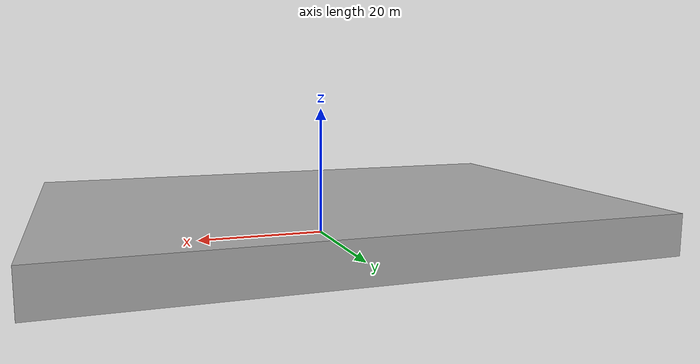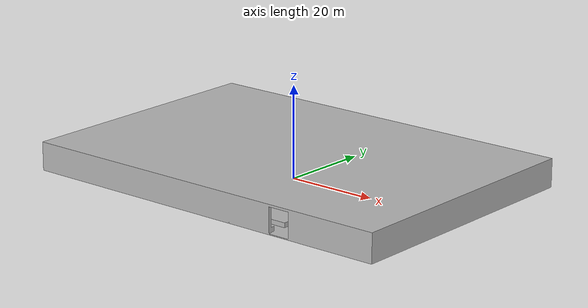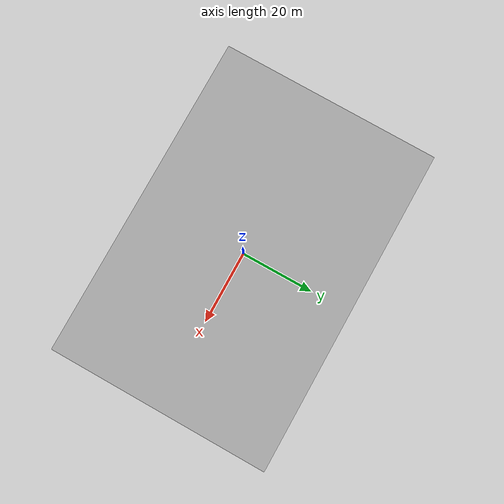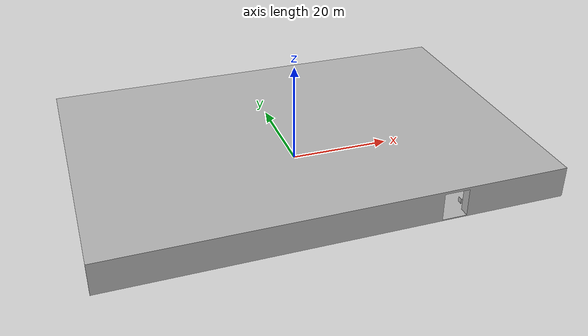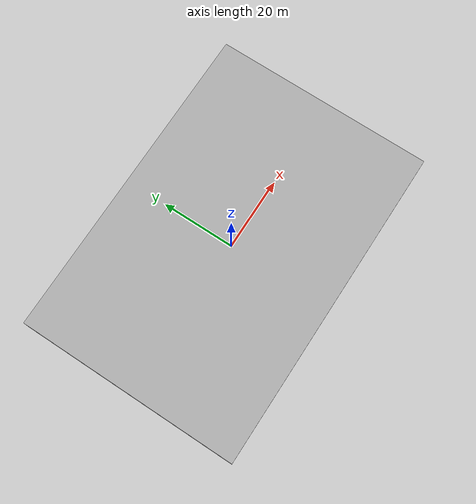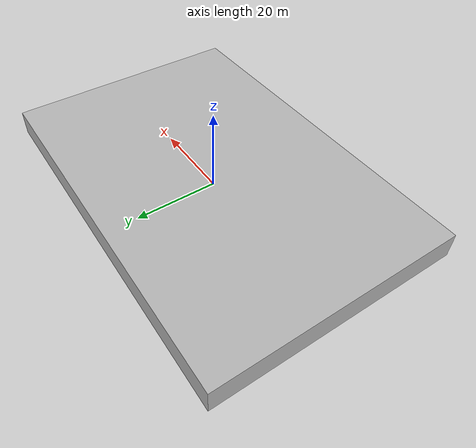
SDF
<?xml version="1.0" ?>
<sdf version="1.6">
  <model name="HEB College Station Low Ceiling">
    <static>true</static>
    <link name="link">
      <collision name="collision">
        <geometry>
          <mesh>
            <uri>model://heb_college_station_low_ceiling/meshes/grocery_store_v2_low_ceiling.stl</uri>
          </mesh>
        </geometry>
      </collision>
      <visual name="visual">
        <geometry>
          <mesh>
            <uri>model://heb_college_station_low_ceiling/meshes/grocery_store_v2_low_ceiling.dae</uri>
          </mesh>
        </geometry>
      </visual>
    </link>
  </model>
</sdf>
